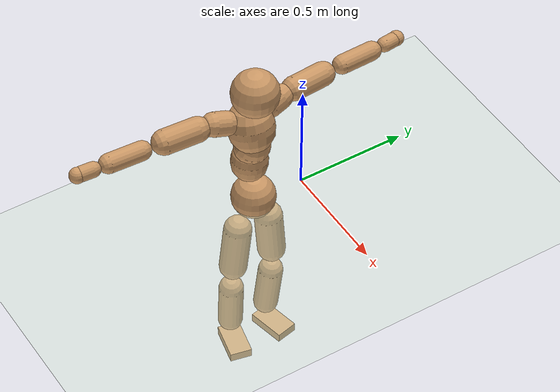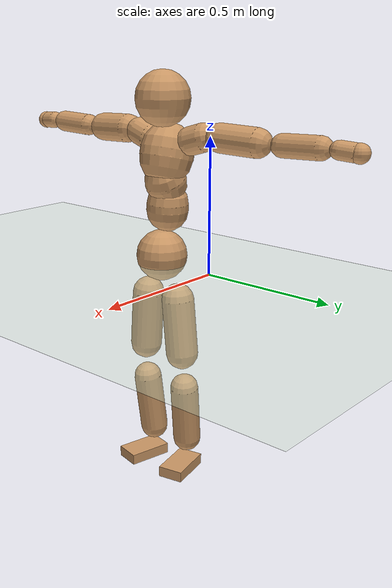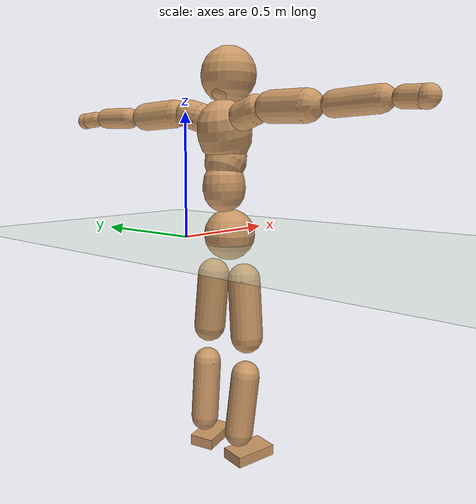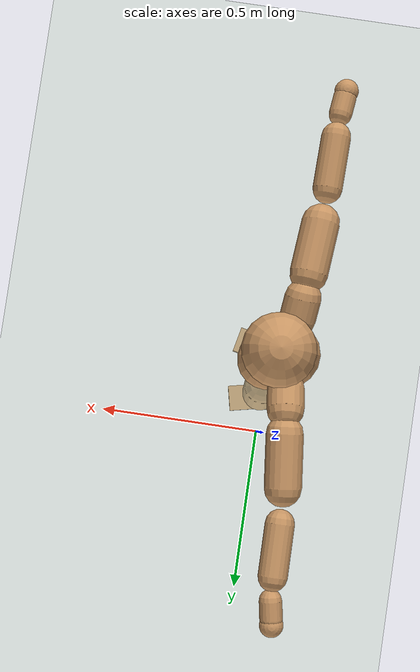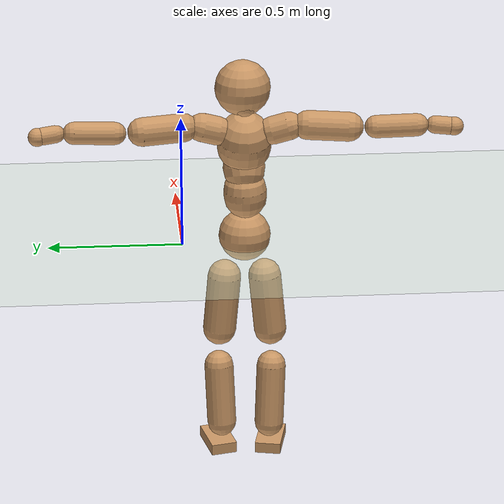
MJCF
<mujoco model="humanoid">
  <compiler coordinate="local"/>
  <default>
    <joint damping="0.0" armature="0.01" stiffness="0.0" limited="true"/>
    <geom conaffinity="1" condim="3" contype="7" margin="0.001" rgba="0.8 0.6 .4 1"/>
  </default>
  <asset>
    <texture type="skybox" builtin="gradient" rgb1=".4 .5 .6" rgb2="0 0 0" width="100" height="100"/>
    <texture builtin="flat" height="1278" mark="cross" markrgb="1 1 1" name="texgeom" random="0.01" rgb1="0.8 0.6 0.4" rgb2="0.8 0.6 0.4" type="cube" width="127"/>
    <texture builtin="checker" height="100" name="texplane" rgb1="0 0 0" rgb2="0.8 0.8 0.8" type="2d" width="100"/>
    <material name="MatPlane" reflectance="0.5" shininess="1" specular="1" texrepeat="60 60" texture="texplane"/>
    <material name="geom" texture="texgeom" texuniform="true"/>
  </asset>
  <worldbody>
    <light cutoff="100" diffuse="1 1 1" dir="-0 0 -1.3" directional="true" exponent="1" pos="0 0 1.3" specular=".1 .1 .1"/>
    <geom conaffinity="1" condim="3" name="floor" pos="0 0 0" rgba="0.8 0.9 0.8 1" size="100 100 .2" type="plane" material="MatPlane"/>
    <body name="Pelvis" pos="-0.0019 -0.2335 0.0333">
      <freejoint name="Pelvis"/>
      <geom type="sphere" contype="1" conaffinity="1" density="500" size="0.0973" pos="0.0000 0.0000 0.0000" name="Pelvis"/>
      <body name="L_Hip" pos="-0.0037 0.0702 -0.0925">
        <joint name="L_Hip_x" type="hinge" pos="0 0 0" axis="1 0 0" stiffness="800" damping="80" armature="0.02" range="-180.0000 180.0000"/>
        <joint name="L_Hip_y" type="hinge" pos="0 0 0" axis="0 1 0" stiffness="800" damping="80" armature="0.02" range="-180.0000 180.0000"/>
        <joint name="L_Hip_z" type="hinge" pos="0 0 0" axis="0 0 1" stiffness="800" damping="80" armature="0.02" range="-180.0000 180.0000"/>
        <geom type="capsule" contype="1" conaffinity="1" density="500" fromto="-0.0010 0.0064 -0.0720 -0.0038 0.0255 -0.2879" size="0.0623" name="L_Hip"/>
        <body name="L_Knee" pos="-0.0048 0.0319 -0.3599">
          <joint name="L_Knee_x" type="hinge" pos="0 0 0" axis="1 0 0" stiffness="800" damping="80" armature="0.02" range="-180.0000 180.0000"/>
          <joint name="L_Knee_y" type="hinge" pos="0 0 0" axis="0 1 0" stiffness="800" damping="80" armature="0.02" range="-180.0000 180.0000"/>
          <joint name="L_Knee_z" type="hinge" pos="0 0 0" axis="0 0 1" stiffness="800" damping="80" armature="0.02" range="-180.0000 180.0000"/>
          <geom type="capsule" contype="1" conaffinity="1" density="500" fromto="-0.0088 -0.0028 -0.0768 -0.0351 -0.0113 -0.3072" size="0.0548" name="L_Knee"/>
          <body name="L_Ankle" pos="-0.0438 -0.0141 -0.384">
            <joint name="L_Ankle_x" type="hinge" pos="0 0 0" axis="1 0 0" stiffness="800" damping="80" armature="0.02" range="-180.0000 180.0000"/>
            <joint name="L_Ankle_y" type="hinge" pos="0 0 0" axis="0 1 0" stiffness="800" damping="80" armature="0.02" range="-180.0000 180.0000"/>
            <joint name="L_Ankle_z" type="hinge" pos="0 0 0" axis="0 0 1" stiffness="800" damping="80" armature="0.02" range="-180.0000 180.0000"/>
            <geom type="box" contype="1" conaffinity="1" density="500" pos="0.0595 0.0130 -0.0270" size="0.0851 0.0489 0.0209" quat="0.9942 0.0000 0.0000 0.1076" name="L_Ankle"/>
            <body name="L_Toe" pos="0.119 0.0261 -0.0541">
              <joint name="L_Toe_x" type="hinge" pos="0 0 0" axis="1 0 0" stiffness="500" damping="50" armature="0.02" range="-180.0000 180.0000"/>
              <joint name="L_Toe_y" type="hinge" pos="0 0 0" axis="0 1 0" stiffness="500" damping="50" armature="0.02" range="-180.0000 180.0000"/>
              <joint name="L_Toe_z" type="hinge" pos="0 0 0" axis="0 0 1" stiffness="500" damping="50" armature="0.02" range="-180.0000 180.0000"/>
              <geom type="box" contype="1" conaffinity="1" density="500" pos="0.0000 0.0000 0.0261" size="0.001 0.0024 0.001" quat="0.9935 0.0000 0.0000 0.1137" name="L_Toe"/>
            </body>
          </body>
        </body>
      </body>
      <body name="R_Hip" pos="-0.0012 -0.0686 -0.0914">
        <joint name="R_Hip_x" type="hinge" pos="0 0 0" axis="1 0 0" stiffness="800" damping="80" armature="0.02" range="-180.0000 180.0000"/>
        <joint name="R_Hip_y" type="hinge" pos="0 0 0" axis="0 1 0" stiffness="800" damping="80" armature="0.02" range="-180.0000 180.0000"/>
        <joint name="R_Hip_z" type="hinge" pos="0 0 0" axis="0 0 1" stiffness="800" damping="80" armature="0.02" range="-180.0000 180.0000"/>
        <geom type="capsule" contype="1" conaffinity="1" density="500" fromto="-0.0019 -0.0070 -0.0737 -0.0076 -0.0280 -0.2948" size="0.0614" name="R_Hip"/>
        <body name="R_Knee" pos="-0.0094 -0.035 -0.3685">
          <joint name="R_Knee_x" type="hinge" pos="0 0 0" axis="1 0 0" stiffness="800" damping="80" armature="0.02" range="-180.0000 180.0000"/>
          <joint name="R_Knee_y" type="hinge" pos="0 0 0" axis="0 1 0" stiffness="800" damping="80" armature="0.02" range="-180.0000 180.0000"/>
          <joint name="R_Knee_z" type="hinge" pos="0 0 0" axis="0 0 1" stiffness="800" damping="80" armature="0.02" range="-180.0000 180.0000"/>
          <geom type="capsule" contype="1" conaffinity="1" density="500" fromto="-0.0086 0.0031 -0.0770 -0.0344 0.0126 -0.3079" size="0.0548" name="R_Knee"/>
          <body name="R_Ankle" pos="-0.0431 0.0157 -0.3849">
            <joint name="R_Ankle_x" type="hinge" pos="0 0 0" axis="1 0 0" stiffness="800" damping="80" armature="0.02" range="-180.0000 180.0000"/>
            <joint name="R_Ankle_y" type="hinge" pos="0 0 0" axis="0 1 0" stiffness="800" damping="80" armature="0.02" range="-180.0000 180.0000"/>
            <joint name="R_Ankle_z" type="hinge" pos="0 0 0" axis="0 0 1" stiffness="800" damping="80" armature="0.02" range="-180.0000 180.0000"/>
            <geom type="box" contype="1" conaffinity="1" density="500" pos="0.0615 -0.0132 -0.0232" size="0.0861 0.049 0.0208" quat="0.9944 0.0000 0.0000 -0.1053" name="R_Ankle"/>
            <body name="R_Toe" pos="0.123 -0.0263 -0.0464">
              <joint name="R_Toe_x" type="hinge" pos="0 0 0" axis="1 0 0" stiffness="500" damping="50" armature="0.02" range="-180.0000 180.0000"/>
              <joint name="R_Toe_y" type="hinge" pos="0 0 0" axis="0 1 0" stiffness="500" damping="50" armature="0.02" range="-180.0000 180.0000"/>
              <joint name="R_Toe_z" type="hinge" pos="0 0 0" axis="0 0 1" stiffness="500" damping="50" armature="0.02" range="-180.0000 180.0000"/>
              <geom type="box" contype="1" conaffinity="1" density="500" pos="0.0000 0.0000 0.0235" size="0.001 0.0024 0.0011" quat="0.9954 0.0000 0.0000 -0.0960" name="R_Toe"/>
            </body>
          </body>
        </body>
      </body>
      <body name="Torso" pos="-0.0322 -0.0025 0.1121">
        <joint name="Torso_x" type="hinge" pos="0 0 0" axis="1 0 0" stiffness="1000" damping="100" armature="0.02" range="-180.0000 180.0000"/>
        <joint name="Torso_y" type="hinge" pos="0 0 0" axis="0 1 0" stiffness="1000" damping="100" armature="0.02" range="-180.0000 180.0000"/>
        <joint name="Torso_z" type="hinge" pos="0 0 0" axis="0 0 1" stiffness="1000" damping="100" armature="0.02" range="-180.0000 180.0000"/>
        <geom type="capsule" contype="1" conaffinity="1" density="500" fromto="-0.0002 0.0037 0.0830 -0.0001 0.0024 0.0553" size="0.0798" name="Torso"/>
        <body name="Spine" pos="-0.0003 0.0061 0.1383">
          <joint name="Spine_x" type="hinge" pos="0 0 0" axis="1 0 0" stiffness="1000" damping="100" armature="0.02" range="-180.0000 180.0000"/>
          <joint name="Spine_y" type="hinge" pos="0 0 0" axis="0 1 0" stiffness="1000" damping="100" armature="0.02" range="-180.0000 180.0000"/>
          <joint name="Spine_z" type="hinge" pos="0 0 0" axis="0 0 1" stiffness="1000" damping="100" armature="0.02" range="-180.0000 180.0000"/>
          <geom type="capsule" contype="1" conaffinity="1" density="500" fromto="0.0158 0.0008 0.0327 0.0105 0.0005 0.0218" size="0.0785" name="Spine"/>
          <body name="Chest" pos="0.0263 0.0013 0.0545">
            <joint name="Chest_x" type="hinge" pos="0 0 0" axis="1 0 0" stiffness="1000" damping="100" armature="0.02" range="-180.0000 180.0000"/>
            <joint name="Chest_y" type="hinge" pos="0 0 0" axis="0 1 0" stiffness="1000" damping="100" armature="0.02" range="-180.0000 180.0000"/>
            <joint name="Chest_z" type="hinge" pos="0 0 0" axis="0 0 1" stiffness="1000" damping="100" armature="0.02" range="-180.0000 180.0000"/>
            <geom type="capsule" contype="1" conaffinity="1" density="500" fromto="-0.0239 -0.0011 0.0919 -0.0160 -0.0007 0.0613" size="0.1006" name="Chest"/>
            <body name="Neck" pos="-0.0453 -0.0022 0.2151">
              <joint name="Neck_x" type="hinge" pos="0 0 0" axis="1 0 0" stiffness="500" damping="50" armature="0.02" range="-180.0000 180.0000"/>
              <joint name="Neck_y" type="hinge" pos="0 0 0" axis="0 1 0" stiffness="500" damping="50" armature="0.02" range="-180.0000 180.0000"/>
              <joint name="Neck_z" type="hinge" pos="0 0 0" axis="0 0 1" stiffness="500" damping="50" armature="0.02" range="-180.0000 180.0000"/>
              <geom type="capsule" contype="1" conaffinity="1" density="500" fromto="0.0101 0.0011 0.0126 0.0404 0.0043 0.0503" size="0.0448" name="Neck"/>
              <body name="Head" pos="0.0505 0.0054 0.0629">
                <joint name="Head_x" type="hinge" pos="0 0 0" axis="1 0 0" stiffness="500" damping="50" armature="0.02" range="-180.0000 180.0000"/>
                <joint name="Head_y" type="hinge" pos="0 0 0" axis="0 1 0" stiffness="500" damping="50" armature="0.02" range="-180.0000 180.0000"/>
                <joint name="Head_z" type="hinge" pos="0 0 0" axis="0 0 1" stiffness="500" damping="50" armature="0.02" range="-180.0000 180.0000"/>
                <geom type="sphere" contype="1" conaffinity="1" density="500" size="0.1028" pos="0.0000 0.0000 0.0000" name="Head"/>
              </body>
            </body>
            <body name="L_Thorax" pos="-0.0349 0.0802 0.1237">
              <joint name="L_Thorax_x" type="hinge" pos="0 0 0" axis="1 0 0" stiffness="500" damping="50" armature="0.02" range="-180.0000 180.0000"/>
              <joint name="L_Thorax_y" type="hinge" pos="0 0 0" axis="0 1 0" stiffness="500" damping="50" armature="0.02" range="-180.0000 180.0000"/>
              <joint name="L_Thorax_z" type="hinge" pos="0 0 0" axis="0 0 1" stiffness="500" damping="50" armature="0.02" range="-180.0000 180.0000"/>
              <geom type="capsule" contype="1" conaffinity="1" density="500" fromto="-0.0020 0.0186 0.0056 -0.0079 0.0744 0.0224" size="0.0533" name="L_Thorax"/>
              <body name="L_Shoulder" pos="-0.0099 0.0929 0.028">
                <joint name="L_Shoulder_x" type="hinge" pos="0 0 0" axis="1 0 0" stiffness="500" damping="50" armature="0.02" range="-720.0000 720.0000"/>
                <joint name="L_Shoulder_y" type="hinge" pos="0 0 0" axis="0 1 0" stiffness="500" damping="50" armature="0.02" range="-720.0000 720.0000"/>
                <joint name="L_Shoulder_z" type="hinge" pos="0 0 0" axis="0 0 1" stiffness="500" damping="50" armature="0.02" range="-720.0000 720.0000"/>
                <geom type="capsule" contype="1" conaffinity="1" density="500" fromto="-0.0055 0.0502 -0.0020 -0.0221 0.2007 -0.0079" size="0.0533" name="L_Shoulder"/>
                <body name="L_Elbow" pos="-0.0277 0.2509 -0.0098">
                  <joint name="L_Elbow_x" type="hinge" pos="0 0 0" axis="1 0 0" stiffness="500" damping="50" armature="0.02" range="-720.0000 720.0000"/>
                  <joint name="L_Elbow_y" type="hinge" pos="0 0 0" axis="0 1 0" stiffness="500" damping="50" armature="0.02" range="-720.0000 720.0000"/>
                  <joint name="L_Elbow_z" type="hinge" pos="0 0 0" axis="0 0 1" stiffness="500" damping="50" armature="0.02" range="-720.0000 720.0000"/>
                  <geom type="capsule" contype="1" conaffinity="1" density="500" fromto="-0.0002 0.0489 0.0016 -0.0008 0.1954 0.0065" size="0.0417" name="L_Elbow"/>
                  <body name="L_Wrist" pos="-0.001 0.2443 0.0081">
                    <joint name="L_Wrist_x" type="hinge" pos="0 0 0" axis="1 0 0" stiffness="300" damping="30" armature="0.02" range="-180.0000 180.0000"/>
                    <joint name="L_Wrist_y" type="hinge" pos="0 0 0" axis="0 1 0" stiffness="300" damping="30" armature="0.02" range="-180.0000 180.0000"/>
                    <joint name="L_Wrist_z" type="hinge" pos="0 0 0" axis="0 0 1" stiffness="300" damping="30" armature="0.02" range="-180.0000 180.0000"/>
                    <geom type="capsule" contype="1" conaffinity="1" density="500" fromto="-0.0031 0.0169 -0.0015 -0.0123 0.0677 -0.0059" size="0.0323" name="L_Wrist"/>
                    <body name="L_Hand" pos="-0.0153 0.0846 -0.0074">
                      <joint name="L_Hand_x" type="hinge" pos="0 0 0" axis="1 0 0" stiffness="300" damping="30" armature="0.02" range="-180.0000 180.0000"/>
                      <joint name="L_Hand_y" type="hinge" pos="0 0 0" axis="0 1 0" stiffness="300" damping="30" armature="0.02" range="-180.0000 180.0000"/>
                      <joint name="L_Hand_z" type="hinge" pos="0 0 0" axis="0 0 1" stiffness="300" damping="30" armature="0.02" range="-180.0000 180.0000"/>
                      <geom type="sphere" contype="1" conaffinity="1" density="500" size="0.0339" pos="0.0000 0.0000 0.0000" name="L_Hand"/>
                    </body>
                  </body>
                </body>
              </body>
            </body>
            <body name="R_Thorax" pos="-0.0395 -0.0834 0.1206">
              <joint name="R_Thorax_x" type="hinge" pos="0 0 0" axis="1 0 0" stiffness="500" damping="50" armature="0.02" range="-180.0000 180.0000"/>
              <joint name="R_Thorax_y" type="hinge" pos="0 0 0" axis="0 1 0" stiffness="500" damping="50" armature="0.02" range="-180.0000 180.0000"/>
              <joint name="R_Thorax_z" type="hinge" pos="0 0 0" axis="0 0 1" stiffness="500" damping="50" armature="0.02" range="-180.0000 180.0000"/>
              <geom type="capsule" contype="1" conaffinity="1" density="500" fromto="-0.0019 -0.0198 0.0060 -0.0077 -0.0792 0.0240" size="0.0524" name="R_Thorax"/>
              <body name="R_Shoulder" pos="-0.0097 -0.099 0.03">
                <joint name="R_Shoulder_x" type="hinge" pos="0 0 0" axis="1 0 0" stiffness="500" damping="50" armature="0.02" range="-720.0000 720.0000"/>
                <joint name="R_Shoulder_y" type="hinge" pos="0 0 0" axis="0 1 0" stiffness="500" damping="50" armature="0.02" range="-720.0000 720.0000"/>
                <joint name="R_Shoulder_z" type="hinge" pos="0 0 0" axis="0 0 1" stiffness="500" damping="50" armature="0.02" range="-720.0000 720.0000"/>
                <geom type="capsule" contype="1" conaffinity="1" density="500" fromto="-0.0044 -0.0494 -0.0020 -0.0177 -0.1974 -0.0080" size="0.0546" name="R_Shoulder"/>
                <body name="R_Elbow" pos="-0.0221 -0.2468 -0.0099">
                  <joint name="R_Elbow_x" type="hinge" pos="0 0 0" axis="1 0 0" stiffness="500" damping="50" armature="0.02" range="-720.0000 720.0000"/>
                  <joint name="R_Elbow_y" type="hinge" pos="0 0 0" axis="0 1 0" stiffness="500" damping="50" armature="0.02" range="-720.0000 720.0000"/>
                  <joint name="R_Elbow_z" type="hinge" pos="0 0 0" axis="0 0 1" stiffness="500" damping="50" armature="0.02" range="-720.0000 720.0000"/>
                  <geom type="capsule" contype="1" conaffinity="1" density="500" fromto="-0.0011 -0.0499 0.0014 -0.0044 -0.1997 0.0055" size="0.0421" name="R_Elbow"/>
                  <body name="R_Wrist" pos="-0.0055 -0.2496 0.0068">
                    <joint name="R_Wrist_x" type="hinge" pos="0 0 0" axis="1 0 0" stiffness="300" damping="30" armature="0.02" range="-180.0000 180.0000"/>
                    <joint name="R_Wrist_y" type="hinge" pos="0 0 0" axis="0 1 0" stiffness="300" damping="30" armature="0.02" range="-180.0000 180.0000"/>
                    <joint name="R_Wrist_z" type="hinge" pos="0 0 0" axis="0 0 1" stiffness="300" damping="30" armature="0.02" range="-180.0000 180.0000"/>
                    <geom type="capsule" contype="1" conaffinity="1" density="500" fromto="-0.0020 -0.0171 -0.0011 -0.0081 -0.0684 -0.0045" size="0.0332" name="R_Wrist"/>
                    <body name="R_Hand" pos="-0.0102 -0.0855 -0.0056">
                      <joint name="R_Hand_x" type="hinge" pos="0 0 0" axis="1 0 0" stiffness="300" damping="30" armature="0.02" range="-180.0000 180.0000"/>
                      <joint name="R_Hand_y" type="hinge" pos="0 0 0" axis="0 1 0" stiffness="300" damping="30" armature="0.02" range="-180.0000 180.0000"/>
                      <joint name="R_Hand_z" type="hinge" pos="0 0 0" axis="0 0 1" stiffness="300" damping="30" armature="0.02" range="-180.0000 180.0000"/>
                      <geom type="sphere" contype="1" conaffinity="1" density="500" size="0.0344" pos="0.0000 0.0000 0.0000" name="R_Hand"/>
                    </body>
                  </body>
                </body>
              </body>
            </body>
          </body>
        </body>
      </body>
    </body>
  </worldbody>
  <actuator>
    <motor name="L_Hip_x" joint="L_Hip_x" gear="500"/>
    <motor name="L_Hip_y" joint="L_Hip_y" gear="500"/>
    <motor name="L_Hip_z" joint="L_Hip_z" gear="500"/>
    <motor name="L_Knee_x" joint="L_Knee_x" gear="500"/>
    <motor name="L_Knee_y" joint="L_Knee_y" gear="500"/>
    <motor name="L_Knee_z" joint="L_Knee_z" gear="500"/>
    <motor name="L_Ankle_x" joint="L_Ankle_x" gear="500"/>
    <motor name="L_Ankle_y" joint="L_Ankle_y" gear="500"/>
    <motor name="L_Ankle_z" joint="L_Ankle_z" gear="500"/>
    <motor name="L_Toe_x" joint="L_Toe_x" gear="500"/>
    <motor name="L_Toe_y" joint="L_Toe_y" gear="500"/>
    <motor name="L_Toe_z" joint="L_Toe_z" gear="500"/>
    <motor name="R_Hip_x" joint="R_Hip_x" gear="500"/>
    <motor name="R_Hip_y" joint="R_Hip_y" gear="500"/>
    <motor name="R_Hip_z" joint="R_Hip_z" gear="500"/>
    <motor name="R_Knee_x" joint="R_Knee_x" gear="500"/>
    <motor name="R_Knee_y" joint="R_Knee_y" gear="500"/>
    <motor name="R_Knee_z" joint="R_Knee_z" gear="500"/>
    <motor name="R_Ankle_x" joint="R_Ankle_x" gear="500"/>
    <motor name="R_Ankle_y" joint="R_Ankle_y" gear="500"/>
    <motor name="R_Ankle_z" joint="R_Ankle_z" gear="500"/>
    <motor name="R_Toe_x" joint="R_Toe_x" gear="500"/>
    <motor name="R_Toe_y" joint="R_Toe_y" gear="500"/>
    <motor name="R_Toe_z" joint="R_Toe_z" gear="500"/>
    <motor name="Torso_x" joint="Torso_x" gear="500"/>
    <motor name="Torso_y" joint="Torso_y" gear="500"/>
    <motor name="Torso_z" joint="Torso_z" gear="500"/>
    <motor name="Spine_x" joint="Spine_x" gear="500"/>
    <motor name="Spine_y" joint="Spine_y" gear="500"/>
    <motor name="Spine_z" joint="Spine_z" gear="500"/>
    <motor name="Chest_x" joint="Chest_x" gear="500"/>
    <motor name="Chest_y" joint="Chest_y" gear="500"/>
    <motor name="Chest_z" joint="Chest_z" gear="500"/>
    <motor name="Neck_x" joint="Neck_x" gear="500"/>
    <motor name="Neck_y" joint="Neck_y" gear="500"/>
    <motor name="Neck_z" joint="Neck_z" gear="500"/>
    <motor name="Head_x" joint="Head_x" gear="500"/>
    <motor name="Head_y" joint="Head_y" gear="500"/>
    <motor name="Head_z" joint="Head_z" gear="500"/>
    <motor name="L_Thorax_x" joint="L_Thorax_x" gear="500"/>
    <motor name="L_Thorax_y" joint="L_Thorax_y" gear="500"/>
    <motor name="L_Thorax_z" joint="L_Thorax_z" gear="500"/>
    <motor name="L_Shoulder_x" joint="L_Shoulder_x" gear="500"/>
    <motor name="L_Shoulder_y" joint="L_Shoulder_y" gear="500"/>
    <motor name="L_Shoulder_z" joint="L_Shoulder_z" gear="500"/>
    <motor name="L_Elbow_x" joint="L_Elbow_x" gear="500"/>
    <motor name="L_Elbow_y" joint="L_Elbow_y" gear="500"/>
    <motor name="L_Elbow_z" joint="L_Elbow_z" gear="500"/>
    <motor name="L_Wrist_x" joint="L_Wrist_x" gear="500"/>
    <motor name="L_Wrist_y" joint="L_Wrist_y" gear="500"/>
    <motor name="L_Wrist_z" joint="L_Wrist_z" gear="500"/>
    <motor name="L_Hand_x" joint="L_Hand_x" gear="500"/>
    <motor name="L_Hand_y" joint="L_Hand_y" gear="500"/>
    <motor name="L_Hand_z" joint="L_Hand_z" gear="500"/>
    <motor name="R_Thorax_x" joint="R_Thorax_x" gear="500"/>
    <motor name="R_Thorax_y" joint="R_Thorax_y" gear="500"/>
    <motor name="R_Thorax_z" joint="R_Thorax_z" gear="500"/>
    <motor name="R_Shoulder_x" joint="R_Shoulder_x" gear="500"/>
    <motor name="R_Shoulder_y" joint="R_Shoulder_y" gear="500"/>
    <motor name="R_Shoulder_z" joint="R_Shoulder_z" gear="500"/>
    <motor name="R_Elbow_x" joint="R_Elbow_x" gear="500"/>
    <motor name="R_Elbow_y" joint="R_Elbow_y" gear="500"/>
    <motor name="R_Elbow_z" joint="R_Elbow_z" gear="500"/>
    <motor name="R_Wrist_x" joint="R_Wrist_x" gear="500"/>
    <motor name="R_Wrist_y" joint="R_Wrist_y" gear="500"/>
    <motor name="R_Wrist_z" joint="R_Wrist_z" gear="500"/>
    <motor name="R_Hand_x" joint="R_Hand_x" gear="500"/>
    <motor name="R_Hand_y" joint="R_Hand_y" gear="500"/>
    <motor name="R_Hand_z" joint="R_Hand_z" gear="500"/>
  </actuator>
  <contact>
    <exclude body1="Torso" body2="Chest"/>
    <exclude body1="Head" body2="Chest"/>
    <exclude body1="R_Knee" body2="R_Toe"/>
    <exclude body1="R_Knee" body2="L_Ankle"/>
    <exclude body1="R_Knee" body2="L_Toe"/>
    <exclude body1="L_Knee" body2="L_Toe"/>
    <exclude body1="L_Knee" body2="R_Ankle"/>
    <exclude body1="L_Knee" body2="R_Toe"/>
    <exclude body1="L_Shoulder" body2="Chest"/>
    <exclude body1="R_Shoulder" body2="Chest"/>
  </contact>
  <sensor/>
  <size njmax="700" nconmax="700"/>
</mujoco>
